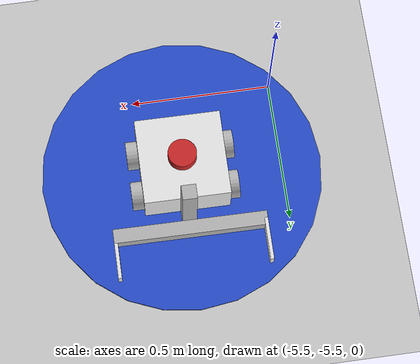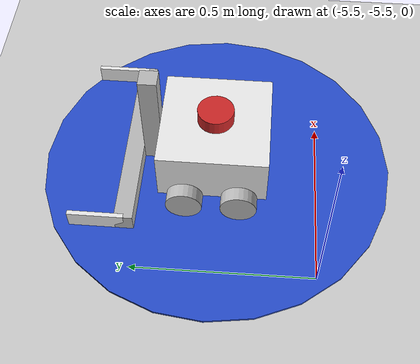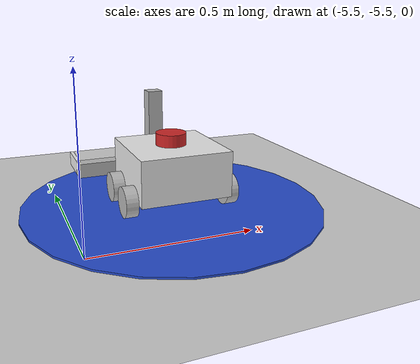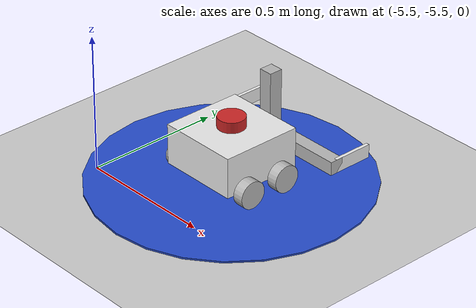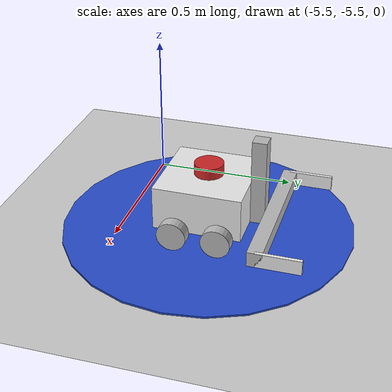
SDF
<sdf version="1.7">
 <world name="default">
  <model name="ground_plane">
   <static>1</static>
   <link name="link">
    <collision name="collision">
     <geometry><plane><normal>0 0 1</normal><size>100 100</size></plane></geometry>
     <surface>
      <contact><collide_bitmask>65535</collide_bitmask></contact>
      <friction><ode><mu>100</mu><mu2>50</mu2></ode></friction>
     </surface>
    </collision>
    <visual name="visual">
     <cast_shadows>0</cast_shadows>
     <geometry><plane><normal>0 0 1</normal><size>100 100</size></plane></geometry>
     <material>
      <script><uri>file://media/materials/scripts/gazebo.material</uri><name>Gazebo/Grey</name></script>
     </material>
    </visual>
   </link>
  </model>
  <model name="Blue_Circle_1">
   <link name="link_0">
    <inertial>
     <mass>1</mass>
     <inertia><ixx>0.145833</ixx><ixy>0</ixy><ixz>0</ixz><iyy>0.145833</iyy><iyz>0</iyz><izz>0.125</izz></inertia>
    </inertial>
    <visual name="visual">
     <geometry><cylinder><radius>0.5</radius><length>0.01</length></cylinder></geometry>
     <material>
      <lighting>1</lighting>
      <script><uri>file://media/materials/scripts/gazebo.material</uri><name>Gazebo/Blue</name></script>
      <shader type="pixel"><normal_map>__default__</normal_map></shader>
      <ambient>0.11 0.443 0.847 1</ambient>
      <diffuse>0.11 0.443 0.847 1</diffuse>
      <specular>0.11 0.443 0.847 1</specular>
      <emissive>0 0 0 1</emissive>
     </material>
    </visual>
    <collision name="collision">
     <geometry><cylinder><radius>0.5</radius><length>0.01</length></cylinder></geometry>
     <surface>
      <friction>
       <ode><mu>1</mu><mu2>1</mu2><fdir1>0 0 0</fdir1><slip1>0</slip1><slip2>0</slip2></ode>
       <torsional>
        <coefficient>1</coefficient>
        <patch_radius>0</patch_radius>
        <surface_radius>0</surface_radius>
        <use_patch_radius>1</use_patch_radius>
        <ode><slip>0</slip></ode>
       </torsional>
      </friction>
      <bounce><restitution_coefficient>0</restitution_coefficient><threshold>1e+06</threshold></bounce>
      <contact>
       <collide_without_contact>0</collide_without_contact>
       <collide_without_contact_bitmask>1</collide_without_contact_bitmask>
       <collide_bitmask>1</collide_bitmask>
       <ode>
        <soft_cfm>0</soft_cfm>
        <soft_erp>0.2</soft_erp>
        <kp>1e+13</kp>
        <kd>1</kd>
        <max_vel>0.01</max_vel>
        <min_depth>0</min_depth>
       </ode>
       <bullet>
        <split_impulse>1</split_impulse>
        <split_impulse_penetration_threshold>-0.01</split_impulse_penetration_threshold>
        <soft_cfm>0</soft_cfm>
        <soft_erp>0.2</soft_erp>
        <kp>1e+13</kp>
        <kd>1</kd>
       </bullet>
      </contact>
     </surface>
    </collision>
   </link>
   <static>1</static>
   <pose>-5.14268 -5.21167 0 0 -0 0</pose>
  </model>
  <model name="robot779">
   <link name="base_link">
    <inertial>
     <pose>0.004248 0 0.127282 0 -0 0</pose>
     <mass>20.6</mass>
     <inertia>
      <ixx>0.195038</ixx>
      <ixy>0</ixy>
      <ixz>-0.00636286</ixz>
      <iyy>0.209979</iyy>
      <iyz>0</iyz>
      <izz>0.315274</izz>
     </inertia>
    </inertial>
    <collision name="base_link_fixed_joint_lump__chassis_collision">
     <pose>0 0 0.125 0 -0 0</pose>
     <geometry><box><size>0.3 0.3 0.15</size></box></geometry>
    </collision>
    <collision name="base_link_fixed_joint_lump__arm_base1_collision_1">
     <pose>0.175 0 0.2 0 -0 0</pose>
     <geometry><box><size>0.05 0.05 0.3</size></box></geometry>
    </collision>
    <collision name="base_link_fixed_joint_lump__laser_frame_collision_2">
     <pose>0 0 0.22 0 -0 0</pose>
     <geometry><cylinder><length>0.04</length><radius>0.05</radius></cylinder></geometry>
    </collision>
    <visual name="base_link_fixed_joint_lump__chassis_visual">
     <pose>0 0 0.125 0 -0 0</pose>
     <geometry><box><size>0.3 0.3 0.15</size></box></geometry>
     <material>
      <script><name>Gazebo/White</name><uri>file://media/materials/scripts/gazebo.material</uri></script>
     </material>
    </visual>
    <visual name="base_link_fixed_joint_lump__arm_base1_visual_1">
     <pose>0.175 0 0.2 0 -0 0</pose>
     <geometry><box><size>0.05 0.05 0.3</size></box></geometry>
    </visual>
    <visual name="base_link_fixed_joint_lump__laser_frame_visual_2">
     <pose>0 0 0.22 0 -0 0</pose>
     <geometry><cylinder><length>0.04</length><radius>0.05</radius></cylinder></geometry>
     <material>
      <script><name>Gazebo/Red</name><uri>file://media/materials/scripts/gazebo.material</uri></script>
     </material>
    </visual>
    <sensor name="laser" type="ray">
     <visualize>1</visualize>
     <update_rate>10</update_rate>
     <ray>
      <scan>
       <horizontal>
        <samples>360</samples>
        <min_angle>-3.14</min_angle>
        <max_angle>3.14</max_angle>
        <resolution>1</resolution>
       </horizontal>
       <vertical><samples>1</samples><min_angle>0</min_angle><max_angle>0</max_angle></vertical>
      </scan>
      <range><min>0.3</min><max>12</max></range>
     </ray>
     <plugin name="laser_controller" filename="libgazebo_ros_ray_sensor.so">
      <ros><argument>~/out:=scan</argument></ros>
      <output_type>sensor_msgs/LaserScan</output_type>
      <frame_name>laser_frame</frame_name>
     </plugin>
     <pose>0 0 0.22 0 -0 0</pose>
    </sensor>
   </link>
   <joint name="back_left_wheel_joint" type="revolute">
    <pose relative_to="base_link">-0.075 0.17 0.05 -1.5708 0 0</pose>
    <parent>base_link</parent>
    <child>back_left_wheel</child>
    <axis>
     <xyz>0 0 1</xyz>
     <limit><lower>-1e+16</lower><upper>1e+16</upper></limit>
     <dynamics><spring_reference>0</spring_reference><spring_stiffness>0</spring_stiffness></dynamics>
    </axis>
   </joint>
   <link name="back_left_wheel">
    <pose relative_to="back_left_wheel_joint">0 0 0 0 -0 0</pose>
    <inertial>
     <mass>0.1</mass>
     <inertia>
      <ixx>7.58333e-05</ixx>
      <ixy>0</ixy>
      <ixz>0</ixz>
      <iyy>7.58333e-05</iyy>
      <iyz>0</iyz>
      <izz>0.000125</izz>
     </inertia>
    </inertial>
    <collision name="back_left_wheel_collision">
     <geometry><cylinder><length>0.04</length><radius>0.05</radius></cylinder></geometry>
     <surface><friction><ode><mu>0.2</mu><mu2>0.2</mu2></ode></friction></surface>
    </collision>
    <visual name="back_left_wheel_visual">
     <geometry><cylinder><length>0.04</length><radius>0.05</radius></cylinder></geometry>
    </visual>
   </link>
   <joint name="back_right_wheel_joint" type="revolute">
    <pose relative_to="base_link">-0.075 -0.17 0.05 1.5708 -0 0</pose>
    <parent>base_link</parent>
    <child>back_right_wheel</child>
    <axis>
     <xyz>0 0 -1</xyz>
     <limit><lower>-1e+16</lower><upper>1e+16</upper></limit>
     <dynamics><spring_reference>0</spring_reference><spring_stiffness>0</spring_stiffness></dynamics>
    </axis>
   </joint>
   <link name="back_right_wheel">
    <pose relative_to="back_right_wheel_joint">0 0 0 0 -0 0</pose>
    <inertial>
     <mass>0.1</mass>
     <inertia>
      <ixx>7.58333e-05</ixx>
      <ixy>0</ixy>
      <ixz>0</ixz>
      <iyy>7.58333e-05</iyy>
      <iyz>0</iyz>
      <izz>0.000125</izz>
     </inertia>
    </inertial>
    <collision name="back_right_wheel_collision">
     <geometry><cylinder><length>0.04</length><radius>0.05</radius></cylinder></geometry>
     <surface><friction><ode><mu>0.2</mu><mu2>0.2</mu2></ode></friction></surface>
    </collision>
    <visual name="back_right_wheel_visual">
     <geometry><cylinder><length>0.04</length><radius>0.05</radius></cylinder></geometry>
    </visual>
   </link>
   <joint name="arm_base2_joint" type="prismatic">
    <pose relative_to="base_link">0.225 0 0.075 0 -0 0</pose>
    <parent>base_link</parent>
    <child>arm_base2</child>
    <axis>
     <xyz>0 0 1</xyz>
     <limit><lower>0</lower><upper>0.2</upper><effort>500</effort><velocity>1</velocity></limit>
     <dynamics><spring_reference>0</spring_reference><spring_stiffness>0</spring_stiffness></dynamics>
    </axis>
   </joint>
   <link name="arm_base2">
    <pose relative_to="arm_base2_joint">0 0 0 0 -0 0</pose>
    <inertial>
     <mass>0.2</mass>
     <inertia>
      <ixx>0.00490167</ixx>
      <ixy>0</ixy>
      <ixz>0</ixz>
      <iyy>8.33333e-05</iyy>
      <iyz>0</iyz>
      <izz>0.00490167</izz>
     </inertia>
    </inertial>
    <collision name="arm_base2_collision"><geometry><box><size>0.05 0.54 0.05</size></box></geometry></collision>
    <visual name="arm_base2_visual"><geometry><box><size>0.05 0.54 0.05</size></box></geometry></visual>
   </link>
   <joint name="arm_slide_joint_L" type="prismatic">
    <pose relative_to="arm_base2">0 -0.26375 0 0 -0 0</pose>
    <parent>arm_base2</parent>
    <child>arm_link_L</child>
    <axis>
     <xyz>0 1 0</xyz>
     <limit><lower>0</lower><upper>0.26375</upper><effort>400</effort><velocity>1</velocity></limit>
     <dynamics><spring_reference>0</spring_reference><spring_stiffness>0</spring_stiffness></dynamics>
    </axis>
   </joint>
   <link name="arm_link_L">
    <pose relative_to="arm_slide_joint_L">0 0 0 0 -0 0</pose>
    <inertial>
     <pose>0.075 0 0 0 -0 0</pose>
     <mass>0.1</mass>
     <inertia>
      <ixx>2.21354e-05</ixx>
      <ixy>0</ixy>
      <ixz>0</ixz>
      <iyy>0.000208333</iyy>
      <iyz>0</iyz>
      <izz>0.000188802</izz>
     </inertia>
    </inertial>
    <collision name="arm_link_L_collision">
     <pose>0.075 0 0 0 -0 0</pose>
     <geometry><box><size>0.15 0.0125 0.05</size></box></geometry>
     <surface>
      <contact><ode><kp>1e+06</kp><kd>1</kd></ode></contact>
      <friction><ode><mu>100</mu><mu2>100</mu2></ode></friction>
     </surface>
    </collision>
    <visual name="arm_link_L_visual">
     <pose>0.075 0 0 0 -0 0</pose>
     <geometry><box><size>0.15 0.0125 0.05</size></box></geometry>
     <material>
      <script><name>Gazebo/White</name><uri>file://media/materials/scripts/gazebo.material</uri></script>
     </material>
    </visual>
   </link>
   <joint name="arm_slide_joint_R" type="prismatic">
    <pose relative_to="arm_base2">0 0.26375 0 0 -0 0</pose>
    <parent>arm_base2</parent>
    <child>arm_link_R</child>
    <axis>
     <xyz>0 1 0</xyz>
     <limit><lower>-0.26375</lower><upper>0</upper><effort>400</effort><velocity>1</velocity></limit>
     <dynamics><spring_reference>0</spring_reference><spring_stiffness>0</spring_stiffness></dynamics>
    </axis>
   </joint>
   <link name="arm_link_R">
    <pose relative_to="arm_slide_joint_R">0 0 0 0 -0 0</pose>
    <inertial>
     <pose>0.075 0 0 0 -0 0</pose>
     <mass>0.1</mass>
     <inertia>
      <ixx>2.21354e-05</ixx>
      <ixy>0</ixy>
      <ixz>0</ixz>
      <iyy>0.000208333</iyy>
      <iyz>0</iyz>
      <izz>0.000188802</izz>
     </inertia>
    </inertial>
    <collision name="arm_link_R_collision">
     <pose>0.075 0 0 0 -0 0</pose>
     <geometry><box><size>0.15 0.0125 0.05</size></box></geometry>
     <surface>
      <contact><ode><kp>1e+06</kp><kd>1</kd></ode></contact>
      <friction><ode><mu>100</mu><mu2>100</mu2></ode></friction>
     </surface>
    </collision>
    <visual name="arm_link_R_visual">
     <pose>0.075 0 0 0 -0 0</pose>
     <geometry><box><size>0.15 0.0125 0.05</size></box></geometry>
     <material>
      <script><name>Gazebo/White</name><uri>file://media/materials/scripts/gazebo.material</uri></script>
     </material>
    </visual>
   </link>
   <joint name="front_left_wheel_joint" type="revolute">
    <pose relative_to="base_link">0.075 0.17 0.05 -1.5708 0 0</pose>
    <parent>base_link</parent>
    <child>front_left_wheel</child>
    <axis>
     <xyz>0 0 1</xyz>
     <limit><lower>-1e+16</lower><upper>1e+16</upper></limit>
     <dynamics><spring_reference>0</spring_reference><spring_stiffness>0</spring_stiffness></dynamics>
    </axis>
   </joint>
   <link name="front_left_wheel">
    <pose relative_to="front_left_wheel_joint">0 0 0 0 -0 0</pose>
    <inertial>
     <mass>0.1</mass>
     <inertia>
      <ixx>7.58333e-05</ixx>
      <ixy>0</ixy>
      <ixz>0</ixz>
      <iyy>7.58333e-05</iyy>
      <iyz>0</iyz>
      <izz>0.000125</izz>
     </inertia>
    </inertial>
    <collision name="front_left_wheel_collision">
     <geometry><cylinder><length>0.04</length><radius>0.05</radius></cylinder></geometry>
     <surface><friction><ode><mu>0.2</mu><mu2>0.2</mu2></ode></friction></surface>
    </collision>
    <visual name="front_left_wheel_visual">
     <geometry><cylinder><length>0.04</length><radius>0.05</radius></cylinder></geometry>
    </visual>
   </link>
   <joint name="front_right_wheel_joint" type="revolute">
    <pose relative_to="base_link">0.075 -0.17 0.05 1.5708 -0 0</pose>
    <parent>base_link</parent>
    <child>front_right_wheel</child>
    <axis>
     <xyz>0 0 -1</xyz>
     <limit><lower>-1e+16</lower><upper>1e+16</upper></limit>
     <dynamics><spring_reference>0</spring_reference><spring_stiffness>0</spring_stiffness></dynamics>
    </axis>
   </joint>
   <link name="front_right_wheel">
    <pose relative_to="front_right_wheel_joint">0 0 0 0 -0 0</pose>
    <inertial>
     <mass>0.1</mass>
     <inertia>
      <ixx>7.58333e-05</ixx>
      <ixy>0</ixy>
      <ixz>0</ixz>
      <iyy>7.58333e-05</iyy>
      <iyz>0</iyz>
      <izz>0.000125</izz>
     </inertia>
    </inertial>
    <collision name="front_right_wheel_collision">
     <geometry><cylinder><length>0.04</length><radius>0.05</radius></cylinder></geometry>
     <surface><friction><ode><mu>0.2</mu><mu2>0.2</mu2></ode></friction></surface>
    </collision>
    <visual name="front_right_wheel_visual">
     <geometry><cylinder><length>0.04</length><radius>0.05</radius></cylinder></geometry>
    </visual>
   </link>
   <plugin name="diff_drive" filename="libgazebo_ros_diff_drive.so">
    <num_wheel_pairs>2</num_wheel_pairs>
    <left_joint>front_left_wheel_joint</left_joint>
    <right_joint>front_right_wheel_joint</right_joint>
    <left_joint>back_left_wheel_joint</left_joint>
    <right_joint>back_right_wheel_joint</right_joint>
    <wheel_separation>0.34</wheel_separation>
    <wheel_diameter>0.1</wheel_diameter>
    <max_wheel_torque>400</max_wheel_torque>
    <max_wheel_acceleration>50.0</max_wheel_acceleration>
    <odometry_frame>odom</odometry_frame>
    <robot_base_frame>base_link</robot_base_frame>
    <publish_odom>1</publish_odom>
    <publish_odom_tf>1</publish_odom_tf>
    <publish_wheel_tf>1</publish_wheel_tf>
   </plugin>
   <plugin name="gazebo_ros2_control" filename="libgazebo_ros2_control.so">
    <parameters>/home/perm/670610779final_ws/install/articubot_one/share/articubot_one/description/my_controllers.yaml</parameters>
   </plugin>
   <frame name="base_footprint_joint" attached_to="base_link"/>
   <frame name="base_footprint" attached_to="base_footprint_joint"/>
   <frame name="arm_base1_joint" attached_to="chassis"><pose>0.175 0 0 0 -0 0</pose></frame>
   <frame name="arm_base1" attached_to="arm_base1_joint"/>
   <frame name="laser_joint" attached_to="chassis"><pose>0 0 0.17 0 -0 0</pose></frame>
   <frame name="laser_frame" attached_to="laser_joint"/>
   <frame name="chassis_joint" attached_to="base_link"><pose>0 0 0.05 0 -0 0</pose></frame>
   <frame name="chassis" attached_to="chassis_joint"/>
   <pose>-5.14392 -5.20951 0.004974 -1.5e-05 2.9e-05 1.5644</pose>
  </model>
 </world>
</sdf>
